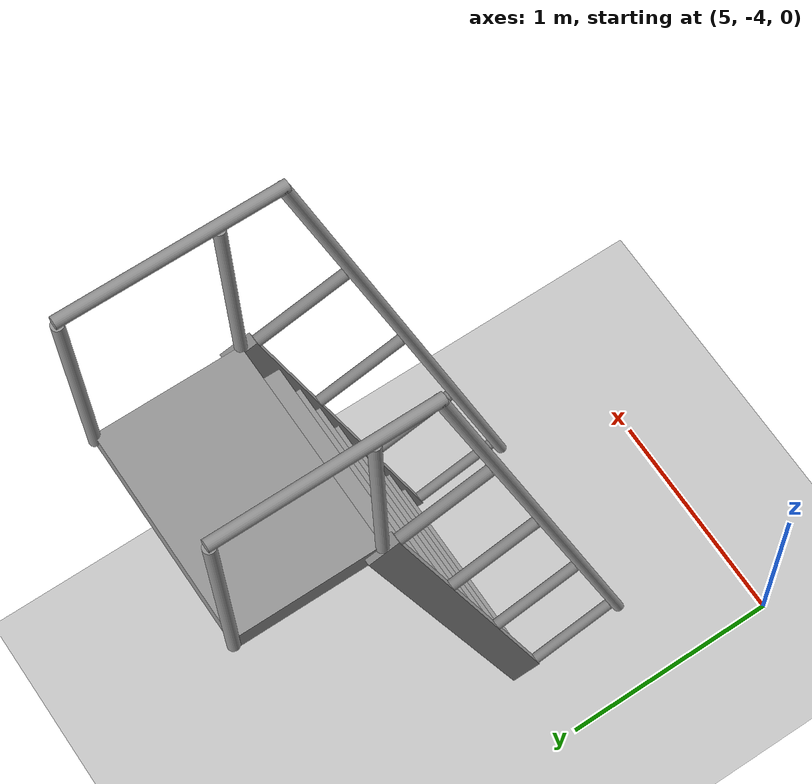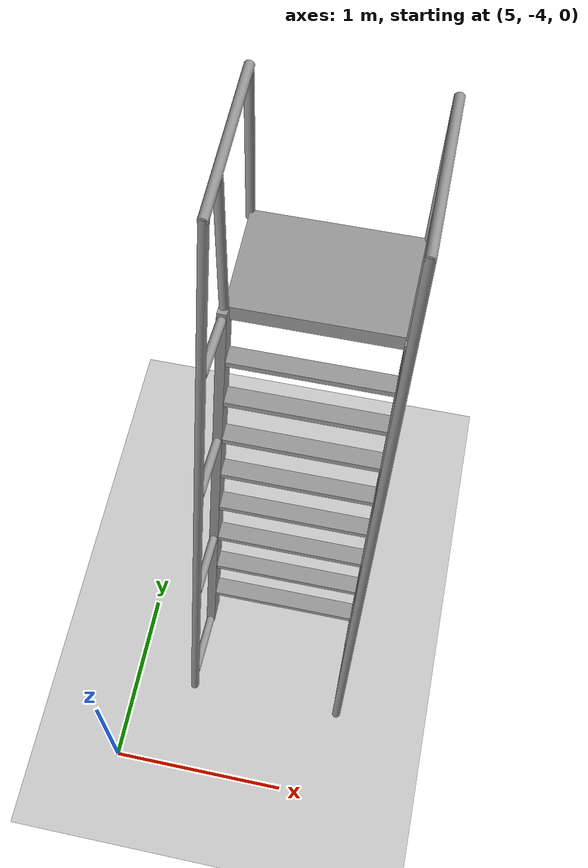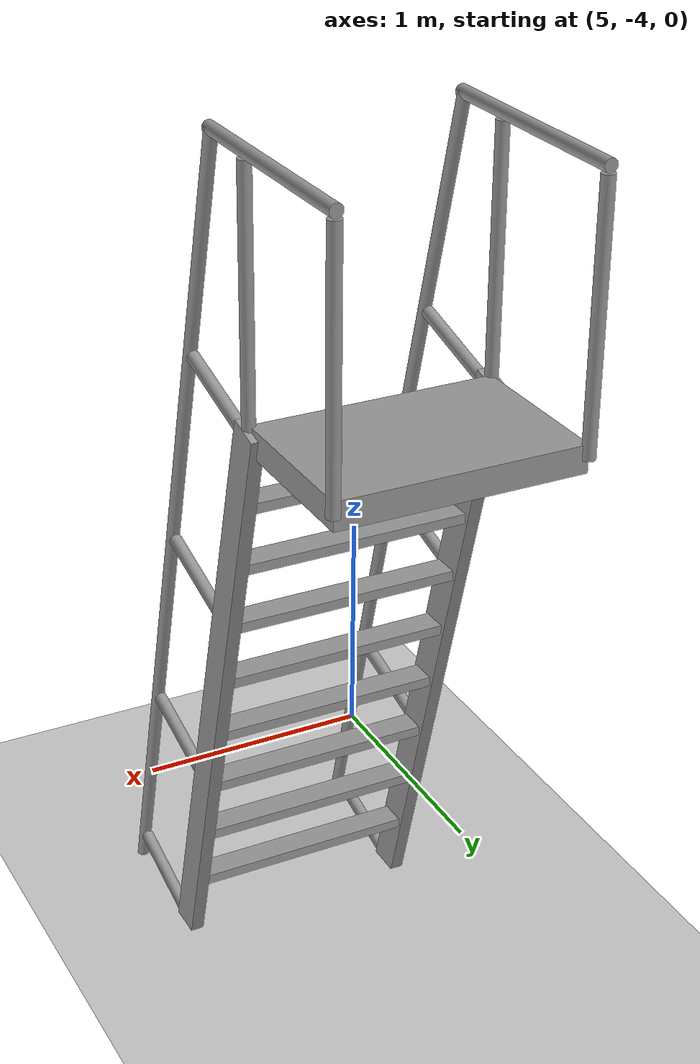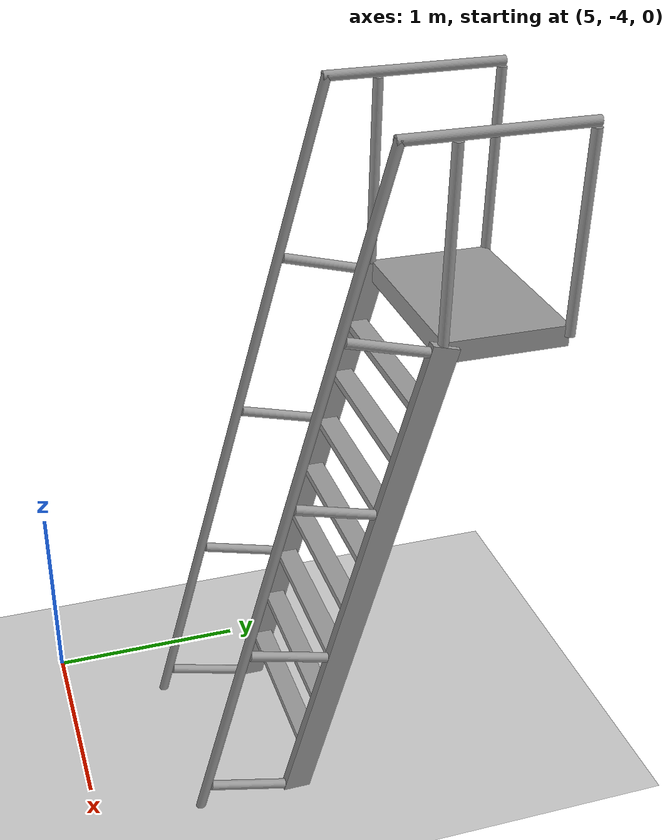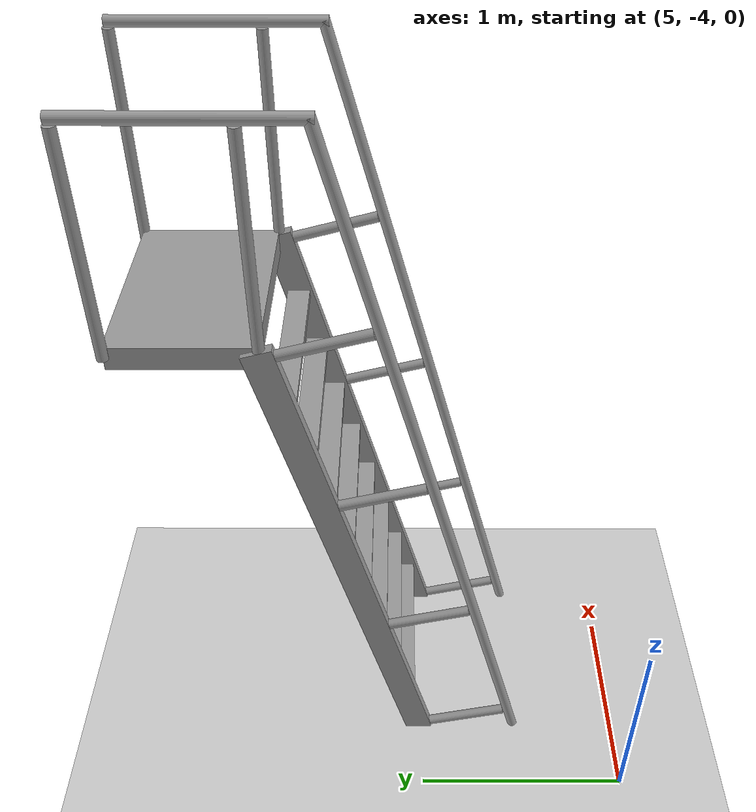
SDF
<sdf version="1.6">
 <world name="default">
  <light name="sun" type="directional">
   <pose>0 0 10 0 -0 0</pose>
   <diffuse>0.8 0.8 0.8 1</diffuse>
   <specular>0.2 0.2 0.2 1</specular>
   <attenuation>
    <range>1000</range>
    <constant>0.9</constant>
    <linear>0.01</linear>
    <quadratic>0.001</quadratic>
   </attenuation>
   <direction>-0.5 0.1 -0.9</direction>
  </light>
  <model name="ground_plane">
   <static>1</static>
   <link name="link">
    <collision name="collision">
     <geometry><plane><normal>0 0 1</normal><size>100 100</size></plane></geometry>
     <surface>
      <contact><collide_bitmask>65535</collide_bitmask></contact>
      <friction><ode><mu>100</mu><mu2>50</mu2></ode></friction>
     </surface>
    </collision>
    <visual name="visual">
     <cast_shadows>0</cast_shadows>
     <geometry><plane><normal>0 0 1</normal><size>100 100</size></plane></geometry>
     <material>
      <script><uri>file://media/materials/scripts/gazebo.material</uri><name>Gazebo/Grey</name></script>
     </material>
    </visual>
   </link>
  </model>
  <gravity>0 0 -9.8</gravity>
  <magnetic_field>6e-06 2.3e-05 -4.2e-05</magnetic_field>
  <atmosphere type="adiabatic"/>
  <physics name="default_physics" default="0" type="ode">
   <max_step_size>0.001</max_step_size>
   <real_time_factor>1</real_time_factor>
   <real_time_update_rate>1000</real_time_update_rate>
  </physics>
  <scene><ambient>0.4 0.4 0.4 1</ambient><background>0.7 0.7 0.7 1</background><shadows>1</shadows></scene>
  <spherical_coordinates>
   <surface_model>EARTH_WGS84</surface_model>
   <latitude_deg>0</latitude_deg>
   <longitude_deg>0</longitude_deg>
   <elevation>0</elevation>
   <heading_deg>0</heading_deg>
  </spherical_coordinates>
  <model name="ladder_75deg_2rails">
   <static>1</static>
   <link name="step0">
    <pose>0 0.071453 0.266667 0 -0 0</pose>
    <inertial>
     <mass>9.75482</mass>
     <inertia>
      <ixx>0.00957124</ixx>
      <iyy>0.65963</iyy>
      <izz>0.666842</izz>
      <ixy>0</ixy>
      <ixz>0</ixz>
      <iyz>0</iyz>
     </inertia>
    </inertial>
    <collision name="collision"><geometry><box><size>0.9 0.1016 0.0381</size></box></geometry></collision>
    <visual name="visual">
     <geometry><box><size>0.9 0.1016 0.0381</size></box></geometry>
     <material>
      <script><uri>file://media/materials/scripts/gazebo.material</uri><name>Gazebo/Grey</name></script>
     </material>
    </visual>
   </link>
   <link name="step1">
    <pose>0 0.142906 0.533333 0 -0 0</pose>
    <inertial>
     <mass>9.75482</mass>
     <inertia>
      <ixx>0.00957124</ixx>
      <iyy>0.65963</iyy>
      <izz>0.666842</izz>
      <ixy>0</ixy>
      <ixz>0</ixz>
      <iyz>0</iyz>
     </inertia>
    </inertial>
    <collision name="collision"><geometry><box><size>0.9 0.1016 0.0381</size></box></geometry></collision>
    <visual name="visual">
     <geometry><box><size>0.9 0.1016 0.0381</size></box></geometry>
     <material>
      <script><uri>file://media/materials/scripts/gazebo.material</uri><name>Gazebo/Grey</name></script>
     </material>
    </visual>
   </link>
   <link name="step2">
    <pose>0 0.214359 0.8 0 -0 0</pose>
    <inertial>
     <mass>9.75482</mass>
     <inertia>
      <ixx>0.00957124</ixx>
      <iyy>0.65963</iyy>
      <izz>0.666842</izz>
      <ixy>0</ixy>
      <ixz>0</ixz>
      <iyz>0</iyz>
     </inertia>
    </inertial>
    <collision name="collision"><geometry><box><size>0.9 0.1016 0.0381</size></box></geometry></collision>
    <visual name="visual">
     <geometry><box><size>0.9 0.1016 0.0381</size></box></geometry>
     <material>
      <script><uri>file://media/materials/scripts/gazebo.material</uri><name>Gazebo/Grey</name></script>
     </material>
    </visual>
   </link>
   <link name="step3">
    <pose>0 0.285812 1.06667 0 -0 0</pose>
    <inertial>
     <mass>9.75482</mass>
     <inertia>
      <ixx>0.00957124</ixx>
      <iyy>0.65963</iyy>
      <izz>0.666842</izz>
      <ixy>0</ixy>
      <ixz>0</ixz>
      <iyz>0</iyz>
     </inertia>
    </inertial>
    <collision name="collision"><geometry><box><size>0.9 0.1016 0.0381</size></box></geometry></collision>
    <visual name="visual">
     <geometry><box><size>0.9 0.1016 0.0381</size></box></geometry>
     <material>
      <script><uri>file://media/materials/scripts/gazebo.material</uri><name>Gazebo/Grey</name></script>
     </material>
    </visual>
   </link>
   <link name="step4">
    <pose>0 0.357266 1.33333 0 -0 0</pose>
    <inertial>
     <mass>9.75482</mass>
     <inertia>
      <ixx>0.00957124</ixx>
      <iyy>0.65963</iyy>
      <izz>0.666842</izz>
      <ixy>0</ixy>
      <ixz>0</ixz>
      <iyz>0</iyz>
     </inertia>
    </inertial>
    <collision name="collision"><geometry><box><size>0.9 0.1016 0.0381</size></box></geometry></collision>
    <visual name="visual">
     <geometry><box><size>0.9 0.1016 0.0381</size></box></geometry>
     <material>
      <script><uri>file://media/materials/scripts/gazebo.material</uri><name>Gazebo/Grey</name></script>
     </material>
    </visual>
   </link>
   <link name="step5">
    <pose>0 0.428719 1.6 0 -0 0</pose>
    <inertial>
     <mass>9.75482</mass>
     <inertia>
      <ixx>0.00957124</ixx>
      <iyy>0.65963</iyy>
      <izz>0.666842</izz>
      <ixy>0</ixy>
      <ixz>0</ixz>
      <iyz>0</iyz>
     </inertia>
    </inertial>
    <collision name="collision"><geometry><box><size>0.9 0.1016 0.0381</size></box></geometry></collision>
    <visual name="visual">
     <geometry><box><size>0.9 0.1016 0.0381</size></box></geometry>
     <material>
      <script><uri>file://media/materials/scripts/gazebo.material</uri><name>Gazebo/Grey</name></script>
     </material>
    </visual>
   </link>
   <link name="step6">
    <pose>0 0.500172 1.86667 0 -0 0</pose>
    <inertial>
     <mass>9.75482</mass>
     <inertia>
      <ixx>0.00957124</ixx>
      <iyy>0.65963</iyy>
      <izz>0.666842</izz>
      <ixy>0</ixy>
      <ixz>0</ixz>
      <iyz>0</iyz>
     </inertia>
    </inertial>
    <collision name="collision"><geometry><box><size>0.9 0.1016 0.0381</size></box></geometry></collision>
    <visual name="visual">
     <geometry><box><size>0.9 0.1016 0.0381</size></box></geometry>
     <material>
      <script><uri>file://media/materials/scripts/gazebo.material</uri><name>Gazebo/Grey</name></script>
     </material>
    </visual>
   </link>
   <link name="step7">
    <pose>0 0.571625 2.13333 0 -0 0</pose>
    <inertial>
     <mass>9.75482</mass>
     <inertia>
      <ixx>0.00957124</ixx>
      <iyy>0.65963</iyy>
      <izz>0.666842</izz>
      <ixy>0</ixy>
      <ixz>0</ixz>
      <iyz>0</iyz>
     </inertia>
    </inertial>
    <collision name="collision"><geometry><box><size>0.9 0.1016 0.0381</size></box></geometry></collision>
    <visual name="visual">
     <geometry><box><size>0.9 0.1016 0.0381</size></box></geometry>
     <material>
      <script><uri>file://media/materials/scripts/gazebo.material</uri><name>Gazebo/Grey</name></script>
     </material>
    </visual>
   </link>
   <link name="landing">
    <pose>0 0.943078 2.4 0 -0 0</pose>
    <inertial>
     <mass>57.6072</mass>
     <inertia><ixx>1.73518</ixx><iyy>3.89545</iyy><izz>5.6167</izz><ixy>0</ixy><ixz>0</ixz><iyz>0</iyz></inertia>
    </inertial>
    <collision name="collision"><geometry><box><size>0.9 0.6 0.1016</size></box></geometry></collision>
    <visual name="visual">
     <geometry><box><size>0.9 0.6 0.1016</size></box></geometry>
     <material>
      <script><uri>file://media/materials/scripts/gazebo.material</uri><name>Gazebo/Grey</name></script>
     </material>
    </visual>
   </link>
   <link name="left_side_wall">
    <pose>-0.45 0.321539 1.2 1.309 -0 0</pose>
    <collision name="collision"><geometry><box><size>0.0508 2.56466 0.13</size></box></geometry></collision>
    <visual name="visual">
     <geometry><box><size>0.0508 2.56466 0.13</size></box></geometry>
     <material>
      <script><uri>file://media/materials/scripts/gazebo.material</uri><name>Gazebo/Grey</name></script>
     </material>
    </visual>
   </link>
   <link name="right_side_wall">
    <pose>0.45 0.321539 1.2 1.309 -0 0</pose>
    <collision name="collision"><geometry><box><size>0.0508 2.56466 0.13</size></box></geometry></collision>
    <visual name="visual">
     <geometry><box><size>0.0508 2.56466 0.13</size></box></geometry>
     <material>
      <script><uri>file://media/materials/scripts/gazebo.material</uri><name>Gazebo/Grey</name></script>
     </material>
    </visual>
   </link>
   <link name="left_railing_long">
    <pose>-0.45 -0.053461 1.66651 -0.261799 0 0</pose>
    <collision name="collision">
     <geometry><cylinder><radius>0.02413</radius><length>3.51529</length></cylinder></geometry>
    </collision>
    <visual name="visual">
     <geometry><cylinder><radius>0.02413</radius><length>3.51529</length></cylinder></geometry>
     <material>
      <script><uri>file://media/materials/scripts/gazebo.material</uri><name>Gazebo/Grey</name></script>
     </material>
    </visual>
   </link>
   <link name="left_railing_upright0">
    <pose>-0.45 -0.210089 0.056293 1.309 -0 0</pose>
    <collision name="collision">
     <geometry><cylinder><radius>0.02413</radius><length>0.482963</length></cylinder></geometry>
    </collision>
    <visual name="visual">
     <geometry><cylinder><radius>0.02413</radius><length>0.482963</length></cylinder></geometry>
     <material>
      <script><uri>file://media/materials/scripts/gazebo.material</uri><name>Gazebo/Grey</name></script>
     </material>
    </visual>
   </link>
   <link name="left_railing_upright1">
    <pose>-0.45 0.00427 0.856293 1.309 -0 0</pose>
    <collision name="collision">
     <geometry><cylinder><radius>0.02413</radius><length>0.482963</length></cylinder></geometry>
    </collision>
    <visual name="visual">
     <geometry><cylinder><radius>0.02413</radius><length>0.482963</length></cylinder></geometry>
     <material>
      <script><uri>file://media/materials/scripts/gazebo.material</uri><name>Gazebo/Grey</name></script>
     </material>
    </visual>
   </link>
   <link name="left_railing_upright2">
    <pose>-0.45 0.21863 1.65629 1.309 -0 0</pose>
    <collision name="collision">
     <geometry><cylinder><radius>0.02413</radius><length>0.482963</length></cylinder></geometry>
    </collision>
    <visual name="visual">
     <geometry><cylinder><radius>0.02413</radius><length>0.482963</length></cylinder></geometry>
     <material>
      <script><uri>file://media/materials/scripts/gazebo.material</uri><name>Gazebo/Grey</name></script>
     </material>
    </visual>
   </link>
   <link name="left_railing_upright3">
    <pose>-0.45 0.432989 2.45629 1.309 -0 0</pose>
    <collision name="collision">
     <geometry><cylinder><radius>0.02413</radius><length>0.482963</length></cylinder></geometry>
    </collision>
    <visual name="visual">
     <geometry><cylinder><radius>0.02413</radius><length>0.482963</length></cylinder></geometry>
     <material>
      <script><uri>file://media/materials/scripts/gazebo.material</uri><name>Gazebo/Grey</name></script>
     </material>
    </visual>
   </link>
   <link name="left_railing_landing_top">
    <pose>-0.45 0.818078 3.35714 1.5708 -0 0</pose>
    <collision name="collision">
     <geometry><cylinder><radius>0.02413</radius><length>0.87413</length></cylinder></geometry>
    </collision>
    <visual name="visual">
     <geometry><cylinder><radius>0.02413</radius><length>0.87413</length></cylinder></geometry>
     <material>
      <script><uri>file://media/materials/scripts/gazebo.material</uri><name>Gazebo/Grey</name></script>
     </material>
    </visual>
   </link>
   <link name="left_railing_landing_upright_0">
    <pose>-0.45 0.643078 2.86651 0 -0 0</pose>
    <collision name="collision">
     <geometry><cylinder><radius>0.02413</radius><length>0.933013</length></cylinder></geometry>
    </collision>
    <visual name="visual">
     <geometry><cylinder><radius>0.02413</radius><length>0.933013</length></cylinder></geometry>
     <material>
      <script><uri>file://media/materials/scripts/gazebo.material</uri><name>Gazebo/Grey</name></script>
     </material>
    </visual>
   </link>
   <link name="left_railing_landing_upright_1">
    <pose>-0.45 1.24308 2.86651 0 -0 0</pose>
    <collision name="collision">
     <geometry><cylinder><radius>0.02413</radius><length>0.933013</length></cylinder></geometry>
    </collision>
    <visual name="visual">
     <geometry><cylinder><radius>0.02413</radius><length>0.933013</length></cylinder></geometry>
     <material>
      <script><uri>file://media/materials/scripts/gazebo.material</uri><name>Gazebo/Grey</name></script>
     </material>
    </visual>
   </link>
   <link name="right_railing_long">
    <pose>0.45 -0.053461 1.66651 -0.261799 0 0</pose>
    <collision name="collision">
     <geometry><cylinder><radius>0.02413</radius><length>3.51529</length></cylinder></geometry>
    </collision>
    <visual name="visual">
     <geometry><cylinder><radius>0.02413</radius><length>3.51529</length></cylinder></geometry>
     <material>
      <script><uri>file://media/materials/scripts/gazebo.material</uri><name>Gazebo/Grey</name></script>
     </material>
    </visual>
   </link>
   <link name="right_railing_upright0">
    <pose>0.45 -0.210089 0.056293 1.309 -0 0</pose>
    <collision name="collision">
     <geometry><cylinder><radius>0.02413</radius><length>0.482963</length></cylinder></geometry>
    </collision>
    <visual name="visual">
     <geometry><cylinder><radius>0.02413</radius><length>0.482963</length></cylinder></geometry>
     <material>
      <script><uri>file://media/materials/scripts/gazebo.material</uri><name>Gazebo/Grey</name></script>
     </material>
    </visual>
   </link>
   <link name="right_railing_upright1">
    <pose>0.45 0.00427 0.856293 1.309 -0 0</pose>
    <collision name="collision">
     <geometry><cylinder><radius>0.02413</radius><length>0.482963</length></cylinder></geometry>
    </collision>
    <visual name="visual">
     <geometry><cylinder><radius>0.02413</radius><length>0.482963</length></cylinder></geometry>
     <material>
      <script><uri>file://media/materials/scripts/gazebo.material</uri><name>Gazebo/Grey</name></script>
     </material>
    </visual>
   </link>
   <link name="right_railing_upright2">
    <pose>0.45 0.21863 1.65629 1.309 -0 0</pose>
    <collision name="collision">
     <geometry><cylinder><radius>0.02413</radius><length>0.482963</length></cylinder></geometry>
    </collision>
    <visual name="visual">
     <geometry><cylinder><radius>0.02413</radius><length>0.482963</length></cylinder></geometry>
     <material>
      <script><uri>file://media/materials/scripts/gazebo.material</uri><name>Gazebo/Grey</name></script>
     </material>
    </visual>
   </link>
   <link name="right_railing_upright3">
    <pose>0.45 0.432989 2.45629 1.309 -0 0</pose>
    <collision name="collision">
     <geometry><cylinder><radius>0.02413</radius><length>0.482963</length></cylinder></geometry>
    </collision>
    <visual name="visual">
     <geometry><cylinder><radius>0.02413</radius><length>0.482963</length></cylinder></geometry>
     <material>
      <script><uri>file://media/materials/scripts/gazebo.material</uri><name>Gazebo/Grey</name></script>
     </material>
    </visual>
   </link>
   <link name="right_railing_landing_top">
    <pose>0.45 0.818078 3.35714 1.5708 -0 0</pose>
    <collision name="collision">
     <geometry><cylinder><radius>0.02413</radius><length>0.87413</length></cylinder></geometry>
    </collision>
    <visual name="visual">
     <geometry><cylinder><radius>0.02413</radius><length>0.87413</length></cylinder></geometry>
     <material>
      <script><uri>file://media/materials/scripts/gazebo.material</uri><name>Gazebo/Grey</name></script>
     </material>
    </visual>
   </link>
   <link name="right_railing_landing_upright_0">
    <pose>0.45 0.643078 2.86651 0 -0 0</pose>
    <collision name="collision">
     <geometry><cylinder><radius>0.02413</radius><length>0.933013</length></cylinder></geometry>
    </collision>
    <visual name="visual">
     <geometry><cylinder><radius>0.02413</radius><length>0.933013</length></cylinder></geometry>
     <material>
      <script><uri>file://media/materials/scripts/gazebo.material</uri><name>Gazebo/Grey</name></script>
     </material>
    </visual>
   </link>
   <link name="right_railing_landing_upright_1">
    <pose>0.45 1.24308 2.86651 0 -0 0</pose>
    <collision name="collision">
     <geometry><cylinder><radius>0.02413</radius><length>0.933013</length></cylinder></geometry>
    </collision>
    <visual name="visual">
     <geometry><cylinder><radius>0.02413</radius><length>0.933013</length></cylinder></geometry>
     <material>
      <script><uri>file://media/materials/scripts/gazebo.material</uri><name>Gazebo/Grey</name></script>
     </material>
    </visual>
   </link>
   <pose>5.80611 -2.97841 0 0 -0 0</pose>
  </model>
 </world>
</sdf>
